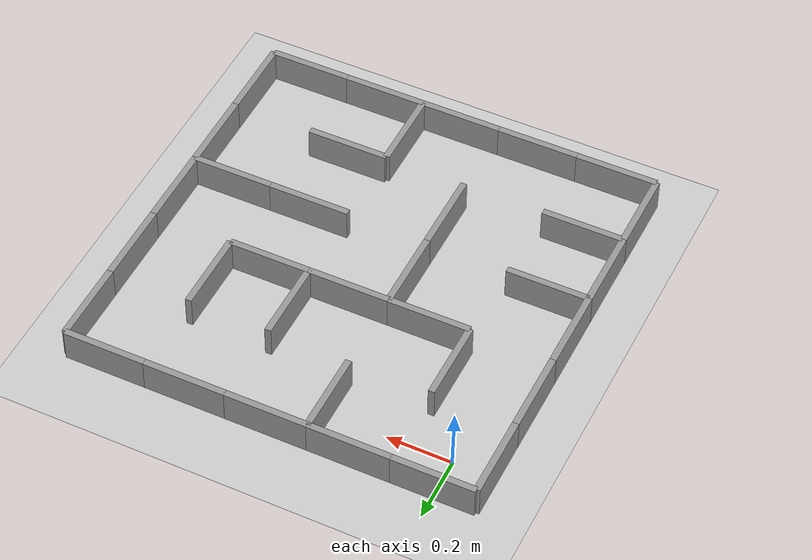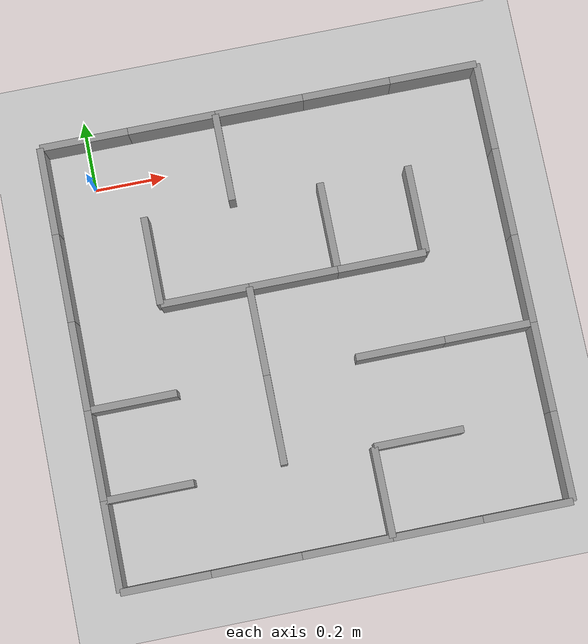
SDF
<?xml version="1.0" ?>
<sdf version="1.6">
  <world name="micromouse_world">

    <include>
      <uri>model://ground_plane</uri>
    </include>

    <model name="wall_1">
      <static>true</static>
      <pose>-0.125 0.0 0.05 0 0 0</pose>
      <link name="link">
        <collision name="collision">
          <geometry>
            <box><size>0.02 0.25 0.1</size></box>
          </geometry>
        </collision>
        <visual name="visual">
          <geometry>
            <box><size>0.02 0.25 0.1</size></box>
          </geometry>
          <material><ambient>0.6 0.6 0.6 1</ambient></material>
        </visual>
      </link>
    </model>

    <model name="wall_2">
      <static>true</static>
      <pose>0.0 0.125 0.05 0 0 0</pose>
      <link name="link">
        <collision name="collision">
          <geometry>
            <box><size>0.25 0.02 0.1</size></box>
          </geometry>
        </collision>
        <visual name="visual">
          <geometry>
            <box><size>0.25 0.02 0.1</size></box>
          </geometry>
          <material><ambient>0.6 0.6 0.6 1</ambient></material>
        </visual>
      </link>
    </model>

    <model name="wall_3">
      <static>true</static>
      <pose>0.25 0.125 0.05 0 0 0</pose>
      <link name="link">
        <collision name="collision">
          <geometry>
            <box><size>0.25 0.02 0.1</size></box>
          </geometry>
        </collision>
        <visual name="visual">
          <geometry>
            <box><size>0.25 0.02 0.1</size></box>
          </geometry>
          <material><ambient>0.6 0.6 0.6 1</ambient></material>
        </visual>
      </link>
    </model>

    <model name="wall_4">
      <static>true</static>
      <pose>0.375 0.0 0.05 0 0 0</pose>
      <link name="link">
        <collision name="collision">
          <geometry>
            <box><size>0.02 0.25 0.1</size></box>
          </geometry>
        </collision>
        <visual name="visual">
          <geometry>
            <box><size>0.02 0.25 0.1</size></box>
          </geometry>
          <material><ambient>0.6 0.6 0.6 1</ambient></material>
        </visual>
      </link>
    </model>

    <model name="wall_5">
      <static>true</static>
      <pose>0.5 0.125 0.05 0 0 0</pose>
      <link name="link">
        <collision name="collision">
          <geometry>
            <box><size>0.25 0.02 0.1</size></box>
          </geometry>
        </collision>
        <visual name="visual">
          <geometry>
            <box><size>0.25 0.02 0.1</size></box>
          </geometry>
          <material><ambient>0.6 0.6 0.6 1</ambient></material>
        </visual>
      </link>
    </model>

    <model name="wall_6">
      <static>true</static>
      <pose>0.75 0.125 0.05 0 0 0</pose>
      <link name="link">
        <collision name="collision">
          <geometry>
            <box><size>0.25 0.02 0.1</size></box>
          </geometry>
        </collision>
        <visual name="visual">
          <geometry>
            <box><size>0.25 0.02 0.1</size></box>
          </geometry>
          <material><ambient>0.6 0.6 0.6 1</ambient></material>
        </visual>
      </link>
    </model>

    <model name="wall_7">
      <static>true</static>
      <pose>1.0 0.125 0.05 0 0 0</pose>
      <link name="link">
        <collision name="collision">
          <geometry>
            <box><size>0.25 0.02 0.1</size></box>
          </geometry>
        </collision>
        <visual name="visual">
          <geometry>
            <box><size>0.25 0.02 0.1</size></box>
          </geometry>
          <material><ambient>0.6 0.6 0.6 1</ambient></material>
        </visual>
      </link>
    </model>

    <model name="wall_8">
      <static>true</static>
      <pose>-0.125 -0.25 0.05 0 0 0</pose>
      <link name="link">
        <collision name="collision">
          <geometry>
            <box><size>0.02 0.25 0.1</size></box>
          </geometry>
        </collision>
        <visual name="visual">
          <geometry>
            <box><size>0.02 0.25 0.1</size></box>
          </geometry>
          <material><ambient>0.6 0.6 0.6 1</ambient></material>
        </visual>
      </link>
    </model>

    <model name="wall_9">
      <static>true</static>
      <pose>0.125 -0.25 0.05 0 0 0</pose>
      <link name="link">
        <collision name="collision">
          <geometry>
            <box><size>0.02 0.25 0.1</size></box>
          </geometry>
        </collision>
        <visual name="visual">
          <geometry>
            <box><size>0.02 0.25 0.1</size></box>
          </geometry>
          <material><ambient>0.6 0.6 0.6 1</ambient></material>
        </visual>
      </link>
    </model>

    <model name="wall_10">
      <static>true</static>
      <pose>0.625 -0.25 0.05 0 0 0</pose>
      <link name="link">
        <collision name="collision">
          <geometry>
            <box><size>0.02 0.25 0.1</size></box>
          </geometry>
        </collision>
        <visual name="visual">
          <geometry>
            <box><size>0.02 0.25 0.1</size></box>
          </geometry>
          <material><ambient>0.6 0.6 0.6 1</ambient></material>
        </visual>
      </link>
    </model>

    <model name="wall_11">
      <static>true</static>
      <pose>0.875 -0.25 0.05 0 0 0</pose>
      <link name="link">
        <collision name="collision">
          <geometry>
            <box><size>0.02 0.25 0.1</size></box>
          </geometry>
        </collision>
        <visual name="visual">
          <geometry>
            <box><size>0.02 0.25 0.1</size></box>
          </geometry>
          <material><ambient>0.6 0.6 0.6 1</ambient></material>
        </visual>
      </link>
    </model>

    <model name="wall_12">
      <static>true</static>
      <pose>-0.125 -0.5 0.05 0 0 0</pose>
      <link name="link">
        <collision name="collision">
          <geometry>
            <box><size>0.02 0.25 0.1</size></box>
          </geometry>
        </collision>
        <visual name="visual">
          <geometry>
            <box><size>0.02 0.25 0.1</size></box>
          </geometry>
          <material><ambient>0.6 0.6 0.6 1</ambient></material>
        </visual>
      </link>
    </model>

    <model name="wall_13">
      <static>true</static>
      <pose>0.25 -0.375 0.05 0 0 0</pose>
      <link name="link">
        <collision name="collision">
          <geometry>
            <box><size>0.25 0.02 0.1</size></box>
          </geometry>
        </collision>
        <visual name="visual">
          <geometry>
            <box><size>0.25 0.02 0.1</size></box>
          </geometry>
          <material><ambient>0.6 0.6 0.6 1</ambient></material>
        </visual>
      </link>
    </model>

    <model name="wall_14">
      <static>true</static>
      <pose>0.375 -0.5 0.05 0 0 0</pose>
      <link name="link">
        <collision name="collision">
          <geometry>
            <box><size>0.02 0.25 0.1</size></box>
          </geometry>
        </collision>
        <visual name="visual">
          <geometry>
            <box><size>0.02 0.25 0.1</size></box>
          </geometry>
          <material><ambient>0.6 0.6 0.6 1</ambient></material>
        </visual>
      </link>
    </model>

    <model name="wall_15">
      <static>true</static>
      <pose>0.5 -0.375 0.05 0 0 0</pose>
      <link name="link">
        <collision name="collision">
          <geometry>
            <box><size>0.25 0.02 0.1</size></box>
          </geometry>
        </collision>
        <visual name="visual">
          <geometry>
            <box><size>0.25 0.02 0.1</size></box>
          </geometry>
          <material><ambient>0.6 0.6 0.6 1</ambient></material>
        </visual>
      </link>
    </model>

    <model name="wall_16">
      <static>true</static>
      <pose>0.75 -0.375 0.05 0 0 0</pose>
      <link name="link">
        <collision name="collision">
          <geometry>
            <box><size>0.25 0.02 0.1</size></box>
          </geometry>
        </collision>
        <visual name="visual">
          <geometry>
            <box><size>0.25 0.02 0.1</size></box>
          </geometry>
          <material><ambient>0.6 0.6 0.6 1</ambient></material>
        </visual>
      </link>
    </model>

    <model name="wall_17">
      <static>true</static>
      <pose>-0.125 -0.75 0.05 0 0 0</pose>
      <link name="link">
        <collision name="collision">
          <geometry>
            <box><size>0.02 0.25 0.1</size></box>
          </geometry>
        </collision>
        <visual name="visual">
          <geometry>
            <box><size>0.02 0.25 0.1</size></box>
          </geometry>
          <material><ambient>0.6 0.6 0.6 1</ambient></material>
        </visual>
      </link>
    </model>

    <model name="wall_18">
      <static>true</static>
      <pose>0.0 -0.625 0.05 0 0 0</pose>
      <link name="link">
        <collision name="collision">
          <geometry>
            <box><size>0.25 0.02 0.1</size></box>
          </geometry>
        </collision>
        <visual name="visual">
          <geometry>
            <box><size>0.25 0.02 0.1</size></box>
          </geometry>
          <material><ambient>0.6 0.6 0.6 1</ambient></material>
        </visual>
      </link>
    </model>

    <model name="wall_19">
      <static>true</static>
      <pose>0.375 -0.75 0.05 0 0 0</pose>
      <link name="link">
        <collision name="collision">
          <geometry>
            <box><size>0.02 0.25 0.1</size></box>
          </geometry>
        </collision>
        <visual name="visual">
          <geometry>
            <box><size>0.02 0.25 0.1</size></box>
          </geometry>
          <material><ambient>0.6 0.6 0.6 1</ambient></material>
        </visual>
      </link>
    </model>

    <model name="wall_20">
      <static>true</static>
      <pose>0.75 -0.625 0.05 0 0 0</pose>
      <link name="link">
        <collision name="collision">
          <geometry>
            <box><size>0.25 0.02 0.1</size></box>
          </geometry>
        </collision>
        <visual name="visual">
          <geometry>
            <box><size>0.25 0.02 0.1</size></box>
          </geometry>
          <material><ambient>0.6 0.6 0.6 1</ambient></material>
        </visual>
      </link>
    </model>

    <model name="wall_21">
      <static>true</static>
      <pose>1.0 -0.625 0.05 0 0 0</pose>
      <link name="link">
        <collision name="collision">
          <geometry>
            <box><size>0.25 0.02 0.1</size></box>
          </geometry>
        </collision>
        <visual name="visual">
          <geometry>
            <box><size>0.25 0.02 0.1</size></box>
          </geometry>
          <material><ambient>0.6 0.6 0.6 1</ambient></material>
        </visual>
      </link>
    </model>

    <model name="wall_22">
      <static>true</static>
      <pose>-0.125 -1.0 0.05 0 0 0</pose>
      <link name="link">
        <collision name="collision">
          <geometry>
            <box><size>0.02 0.25 0.1</size></box>
          </geometry>
        </collision>
        <visual name="visual">
          <geometry>
            <box><size>0.02 0.25 0.1</size></box>
          </geometry>
          <material><ambient>0.6 0.6 0.6 1</ambient></material>
        </visual>
      </link>
    </model>

    <model name="wall_23">
      <static>true</static>
      <pose>0.0 -0.875 0.05 0 0 0</pose>
      <link name="link">
        <collision name="collision">
          <geometry>
            <box><size>0.25 0.02 0.1</size></box>
          </geometry>
        </collision>
        <visual name="visual">
          <geometry>
            <box><size>0.25 0.02 0.1</size></box>
          </geometry>
          <material><ambient>0.6 0.6 0.6 1</ambient></material>
        </visual>
      </link>
    </model>

    <model name="wall_24">
      <static>true</static>
      <pose>0.625 -1.0 0.05 0 0 0</pose>
      <link name="link">
        <collision name="collision">
          <geometry>
            <box><size>0.02 0.25 0.1</size></box>
          </geometry>
        </collision>
        <visual name="visual">
          <geometry>
            <box><size>0.02 0.25 0.1</size></box>
          </geometry>
          <material><ambient>0.6 0.6 0.6 1</ambient></material>
        </visual>
      </link>
    </model>

    <model name="wall_25">
      <static>true</static>
      <pose>0.75 -0.875 0.05 0 0 0</pose>
      <link name="link">
        <collision name="collision">
          <geometry>
            <box><size>0.25 0.02 0.1</size></box>
          </geometry>
        </collision>
        <visual name="visual">
          <geometry>
            <box><size>0.25 0.02 0.1</size></box>
          </geometry>
          <material><ambient>0.6 0.6 0.6 1</ambient></material>
        </visual>
      </link>
    </model>

    <model name="wall_26">
      <static>true</static>
      <pose>1.125 0.0 0.05 0 0 0</pose>
      <link name="link">
        <collision name="collision">
          <geometry>
            <box><size>0.02 0.25 0.1</size></box>
          </geometry>
        </collision>
        <visual name="visual">
          <geometry>
            <box><size>0.02 0.25 0.1</size></box>
          </geometry>
          <material><ambient>0.6 0.6 0.6 1</ambient></material>
        </visual>
      </link>
    </model>

    <model name="wall_27">
      <static>true</static>
      <pose>1.125 -0.25 0.05 0 0 0</pose>
      <link name="link">
        <collision name="collision">
          <geometry>
            <box><size>0.02 0.25 0.1</size></box>
          </geometry>
        </collision>
        <visual name="visual">
          <geometry>
            <box><size>0.02 0.25 0.1</size></box>
          </geometry>
          <material><ambient>0.6 0.6 0.6 1</ambient></material>
        </visual>
      </link>
    </model>

    <model name="wall_28">
      <static>true</static>
      <pose>1.125 -0.5 0.05 0 0 0</pose>
      <link name="link">
        <collision name="collision">
          <geometry>
            <box><size>0.02 0.25 0.1</size></box>
          </geometry>
        </collision>
        <visual name="visual">
          <geometry>
            <box><size>0.02 0.25 0.1</size></box>
          </geometry>
          <material><ambient>0.6 0.6 0.6 1</ambient></material>
        </visual>
      </link>
    </model>

    <model name="wall_29">
      <static>true</static>
      <pose>1.125 -0.75 0.05 0 0 0</pose>
      <link name="link">
        <collision name="collision">
          <geometry>
            <box><size>0.02 0.25 0.1</size></box>
          </geometry>
        </collision>
        <visual name="visual">
          <geometry>
            <box><size>0.02 0.25 0.1</size></box>
          </geometry>
          <material><ambient>0.6 0.6 0.6 1</ambient></material>
        </visual>
      </link>
    </model>

    <model name="wall_30">
      <static>true</static>
      <pose>1.125 -1.0 0.05 0 0 0</pose>
      <link name="link">
        <collision name="collision">
          <geometry>
            <box><size>0.02 0.25 0.1</size></box>
          </geometry>
        </collision>
        <visual name="visual">
          <geometry>
            <box><size>0.02 0.25 0.1</size></box>
          </geometry>
          <material><ambient>0.6 0.6 0.6 1</ambient></material>
        </visual>
      </link>
    </model>

    <model name="wall_31">
      <static>true</static>
      <pose>0.0 -1.125 0.05 0 0 0</pose>
      <link name="link">
        <collision name="collision">
          <geometry>
            <box><size>0.25 0.02 0.1</size></box>
          </geometry>
        </collision>
        <visual name="visual">
          <geometry>
            <box><size>0.25 0.02 0.1</size></box>
          </geometry>
          <material><ambient>0.6 0.6 0.6 1</ambient></material>
        </visual>
      </link>
    </model>

    <model name="wall_32">
      <static>true</static>
      <pose>0.25 -1.125 0.05 0 0 0</pose>
      <link name="link">
        <collision name="collision">
          <geometry>
            <box><size>0.25 0.02 0.1</size></box>
          </geometry>
        </collision>
        <visual name="visual">
          <geometry>
            <box><size>0.25 0.02 0.1</size></box>
          </geometry>
          <material><ambient>0.6 0.6 0.6 1</ambient></material>
        </visual>
      </link>
    </model>

    <model name="wall_33">
      <static>true</static>
      <pose>0.5 -1.125 0.05 0 0 0</pose>
      <link name="link">
        <collision name="collision">
          <geometry>
            <box><size>0.25 0.02 0.1</size></box>
          </geometry>
        </collision>
        <visual name="visual">
          <geometry>
            <box><size>0.25 0.02 0.1</size></box>
          </geometry>
          <material><ambient>0.6 0.6 0.6 1</ambient></material>
        </visual>
      </link>
    </model>

    <model name="wall_34">
      <static>true</static>
      <pose>0.75 -1.125 0.05 0 0 0</pose>
      <link name="link">
        <collision name="collision">
          <geometry>
            <box><size>0.25 0.02 0.1</size></box>
          </geometry>
        </collision>
        <visual name="visual">
          <geometry>
            <box><size>0.25 0.02 0.1</size></box>
          </geometry>
          <material><ambient>0.6 0.6 0.6 1</ambient></material>
        </visual>
      </link>
    </model>

    <model name="wall_35">
      <static>true</static>
      <pose>1.0 -1.125 0.05 0 0 0</pose>
      <link name="link">
        <collision name="collision">
          <geometry>
            <box><size>0.25 0.02 0.1</size></box>
          </geometry>
        </collision>
        <visual name="visual">
          <geometry>
            <box><size>0.25 0.02 0.1</size></box>
          </geometry>
          <material><ambient>0.6 0.6 0.6 1</ambient></material>
        </visual>
      </link>
    </model>

  </world>
</sdf>
